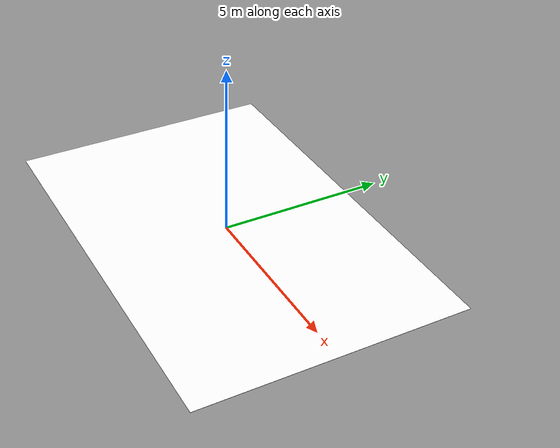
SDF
<?xml version="1.0"?>
<sdf version="1.8">
  <world name="warehouse_world">
    <scene>
      <grid>false</grid>
      <ambient>0.35 0.35 0.35 1</ambient>
      <background>0.05 0.05 0.05 1</background>
    </scene>
    <physics name="1ms" type="ignored">
      <max_step_size>0.002</max_step_size>
      <real_time_factor>1.0</real_time_factor>
    </physics>
    <plugin filename="ignition-gazebo-physics-system" name="ignition::gazebo::systems::Physics"></plugin>
    <plugin filename="ignition-gazebo-user-commands-system" name="ignition::gazebo::systems::UserCommands"></plugin>
    <plugin filename="ignition-gazebo-scene-broadcaster-system" name="ignition::gazebo::systems::SceneBroadcaster"></plugin>

    <include>
        <uri>model://warehouse</uri>
        <pose>0 0 0 0 0 0</pose>
    </include>

  <light name="sun" type="directional">
    <cast_shadows>true</cast_shadows>

    <pose>0 0 5 0 0 0</pose>

    <direction>-0.5 -0.3 -1</direction>

    <diffuse>0.9 0.9 0.9 1</diffuse>
    <specular>0.3 0.3 0.3 1</specular>

    <attenuation>
      <range>200</range>
      <constant>0.9</constant>
      <linear>0.01</linear>
      <quadratic>0.001</quadratic>
    </attenuation>
  </light>

  <light name="warehouse_lamp_1" type="point">
    <pose>0 9 5 0 0 0</pose>
    <diffuse>1.0 0.95 0.9 1</diffuse>
    <specular>0.2 0.2 0.2 1</specular>
    <attenuation>
      <range>25</range>
      <constant>0.8</constant>
      <linear>0.04</linear>
      <quadratic>0.01</quadratic>
    </attenuation>
  </light>

  <light name="warehouse_lamp_2" type="point">
    <pose>0 3 5 0 0 0</pose>
    <diffuse>1.0 0.95 0.9 1</diffuse>
    <specular>0.2 0.2 0.2 1</specular>
    <attenuation>
      <range>25</range>
      <constant>0.8</constant>
      <linear>0.04</linear>
      <quadratic>0.01</quadratic>
    </attenuation>
  </light>

  <light name="warehouse_lamp_3" type="point">
    <pose>0 -3 5 0 0 0</pose>
    <diffuse>1.0 0.95 0.9 1</diffuse>
    <specular>0.2 0.2 0.2 1</specular>
    <attenuation>
      <range>25</range>
      <constant>0.8</constant>
      <linear>0.04</linear>
      <quadratic>0.01</quadratic>
    </attenuation>
  </light>

  <light name="warehouse_lamp_4" type="point">
    <pose>0 -10 5 0 0 0</pose>
    <diffuse>1.0 0.95 0.9 1</diffuse>
    <specular>0.2 0.2 0.2 1</specular>
    <attenuation>
      <range>25</range>
      <constant>0.8</constant>
      <linear>0.04</linear>
      <quadratic>0.01</quadratic>
    </attenuation>
  </light>

  <light name="warehouse_lamp_5" type="point">
    <pose>-6 -10 5 0 0 0</pose>
    <diffuse>1.0 0.95 0.9 1</diffuse>
    <specular>0.2 0.2 0.2 1</specular>
    <attenuation>
      <range>25</range>
      <constant>0.8</constant>
      <linear>0.04</linear>
      <quadratic>0.01</quadratic>
    </attenuation>
  </light>

  <light name="warehouse_lamp_6" type="point">
    <pose>-15 -10 5 0 0 0</pose>
    <diffuse>1.0 0.95 0.9 1</diffuse>
    <specular>0.2 0.2 0.2 1</specular>
    <attenuation>
      <range>25</range>
      <constant>0.8</constant>
      <linear>0.04</linear>
      <quadratic>0.01</quadratic>
    </attenuation>
  </light>

  </world>
</sdf>

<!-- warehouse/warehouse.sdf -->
<sdf version="1.8">
  <model name="warehouse">
    <static>true</static>
    <link name="testlink">
      <visual name="MainSupportBeam_Walkway_0">
        <geometry>
          <mesh>
            <uri>meshes/warehouse.dae</uri>
            <submesh>
              <name>MainSupportBeam_Walkway_0</name>
            </submesh>
          </mesh>
        </geometry>
        <material>
          <diffuse>1.0 1.0 1.0 1.0</diffuse>
          <specular>0.15 0.15 0.15 1.0</specular>
          <pbr>
            <metal>
              <albedo_map>meshes/Image_0</albedo_map>
            </metal>
          </pbr>
        </material>
      </visual>
      <visual name="cable_Rubber_0">
        <geometry>
          <mesh>
            <uri>meshes/warehouse.dae</uri>
            <submesh>
              <name>cable_Rubber_0</name>
            </submesh>
          </mesh>
        </geometry>
        <material>
          <diffuse>1.0 1.0 1.0 1.0</diffuse>
          <specular>0.15 0.15 0.15 1.0</specular>
          <pbr>
            <metal>
              <albedo_map>meshes/Image_3</albedo_map>
            </metal>
          </pbr>
        </material>
      </visual>
      <visual name="WarehouseWalls_factory_wall_0">
        <geometry>
          <mesh>
            <uri>meshes/warehouse.dae</uri>
            <submesh>
              <name>WarehouseWalls_factory_wall_0</name>
            </submesh>
          </mesh>
        </geometry>
        <material>
          <diffuse>1.0 1.0 1.0 1.0</diffuse>
          <specular>0.15 0.15 0.15 1.0</specular>
          <pbr>
            <metal>
              <albedo_map>meshes/Image_6</albedo_map>
            </metal>
          </pbr>
        </material>
      </visual>
      <visual name="Roof_Walkway_0">
        <geometry>
          <mesh>
            <uri>meshes/warehouse.dae</uri>
            <submesh>
              <name>Roof_Walkway_0</name>
            </submesh>
          </mesh>
        </geometry>
        <material>
          <diffuse>1.0 1.0 1.0 1.0</diffuse>
          <specular>0.15 0.15 0.15 1.0</specular>
          <pbr>
            <metal>
              <albedo_map>meshes/Image_0</albedo_map>
            </metal>
          </pbr>
        </material>
      </visual>
      <visual name="Roof_rusty metal plate corrugated_0">
        <geometry>
          <mesh>
            <uri>meshes/warehouse.dae</uri>
            <submesh>
              <name>Roof_rusty metal plate corrugated_0</name>
            </submesh>
          </mesh>
        </geometry>
        <material>
          <diffuse>1.0 1.0 1.0 1.0</diffuse>
          <specular>0.15 0.15 0.15 1.0</specular>
          <pbr>
            <metal>
              <albedo_map>meshes/Image_9</albedo_map>
            </metal>
          </pbr>
        </material>
      </visual>
      <visual name="SideSupportBeam_Walkway_0">
        <geometry>
          <mesh>
            <uri>meshes/warehouse.dae</uri>
            <submesh>
              <name>SideSupportBeam_Walkway_0</name>
            </submesh>
          </mesh>
        </geometry>
        <material>
          <diffuse>1.0 1.0 1.0 1.0</diffuse>
          <specular>0.15 0.15 0.15 1.0</specular>
          <pbr>
            <metal>
              <albedo_map>meshes/Image_0</albedo_map>
            </metal>
          </pbr>
        </material>
      </visual>
      <visual name="Floor_WarehouseMainConcrete_0">
        <geometry>
          <mesh>
            <uri>meshes/warehouse.dae</uri>
            <submesh>
              <name>Floor_WarehouseMainConcrete_0</name>
            </submesh>
          </mesh>
        </geometry>
        <material>
          <diffuse>1.0 1.0 1.0 1.0</diffuse>
          <specular>0.15 0.15 0.15 1.0</specular>
          <pbr>
            <metal>
              <albedo_map>meshes/Image_12</albedo_map>
            </metal>
          </pbr>
        </material>
      </visual>
      <visual name="Windows_WarehouseWindow_0">
        <geometry>
          <mesh>
            <uri>meshes/warehouse.dae</uri>
            <submesh>
              <name>Windows_WarehouseWindow_0</name>
            </submesh>
          </mesh>
        </geometry>
        <material>
          <diffuse>1.0 1.0 1.0 1.0</diffuse>
          <specular>0.15 0.15 0.15 1.0</specular>
          <pbr>
            <metal>
              <albedo_map>meshes/Image_15</albedo_map>
            </metal>
          </pbr>
        </material>
      </visual>
      <visual name="Windows_WarehouseWindow_0.001">
        <geometry>
          <mesh>
            <uri>meshes/warehouse.dae</uri>
            <submesh>
              <name>Windows_WarehouseWindow_0.001</name>
            </submesh>
          </mesh>
        </geometry>
        <material>
          <diffuse>1.0 1.0 1.0 1.0</diffuse>
          <specular>0.15 0.15 0.15 1.0</specular>
          <pbr>
            <metal>
              <albedo_map>meshes/Image_15</albedo_map>
            </metal>
          </pbr>
        </material>
      </visual>
      <visual name="Office_Office_Floor_0">
        <geometry>
          <mesh>
            <uri>meshes/warehouse.dae</uri>
            <submesh>
              <name>Office_Office_Floor_0</name>
            </submesh>
          </mesh>
        </geometry>
        <material>
          <diffuse>1.0 1.0 1.0 1.0</diffuse>
          <specular>0.15 0.15 0.15 1.0</specular>
          <pbr>
            <metal>
              <albedo_map>meshes/Image_17</albedo_map>
            </metal>
          </pbr>
        </material>
      </visual>
      <visual name="Office_MetalRusted_0">
        <geometry>
          <mesh>
            <uri>meshes/warehouse.dae</uri>
            <submesh>
              <name>Office_MetalRusted_0</name>
            </submesh>
          </mesh>
        </geometry>
        <material>
          <diffuse>1.0 1.0 1.0 1.0</diffuse>
          <specular>0.15 0.15 0.15 1.0</specular>
          <pbr>
            <metal>
              <albedo_map>meshes/Image_20</albedo_map>
            </metal>
          </pbr>
        </material>
      </visual>
      <visual name="Office_factory_wall_0">
        <geometry>
          <mesh>
            <uri>meshes/warehouse.dae</uri>
            <submesh>
              <name>Office_factory_wall_0</name>
            </submesh>
          </mesh>
        </geometry>
        <material>
          <diffuse>1.0 1.0 1.0 1.0</diffuse>
          <specular>0.15 0.15 0.15 1.0</specular>
          <pbr>
            <metal>
              <albedo_map>meshes/Image_6</albedo_map>
            </metal>
          </pbr>
        </material>
      </visual>
      <visual name="Walkway.001_MetalRusted_0">
        <geometry>
          <mesh>
            <uri>meshes/warehouse.dae</uri>
            <submesh>
              <name>Walkway.001_MetalRusted_0</name>
            </submesh>
          </mesh>
        </geometry>
        <material>
          <diffuse>1.0 1.0 1.0 1.0</diffuse>
          <specular>0.15 0.15 0.15 1.0</specular>
          <pbr>
            <metal>
              <albedo_map>meshes/Image_20</albedo_map>
            </metal>
          </pbr>
        </material>
      </visual>
      <visual name="Walkway.001_MetalWalkway_0">
        <geometry>
          <mesh>
            <uri>meshes/warehouse.dae</uri>
            <submesh>
              <name>Walkway.001_MetalWalkway_0</name>
            </submesh>
          </mesh>
        </geometry>
        <material>
          <diffuse>1.0 1.0 1.0 1.0</diffuse>
          <specular>0.15 0.15 0.15 1.0</specular>
          <pbr>
            <metal>
              <albedo_map>meshes/Image_23</albedo_map>
            </metal>
          </pbr>
        </material>
      </visual>
      <visual name="WarehouseBase_WarehouseMainConcrete_0">
        <geometry>
          <mesh>
            <uri>meshes/warehouse.dae</uri>
            <submesh>
              <name>WarehouseBase_WarehouseMainConcrete_0</name>
            </submesh>
          </mesh>
        </geometry>
        <material>
          <diffuse>1.0 1.0 1.0 1.0</diffuse>
          <specular>0.15 0.15 0.15 1.0</specular>
          <pbr>
            <metal>
              <albedo_map>meshes/Image_12</albedo_map>
            </metal>
          </pbr>
        </material>
      </visual>
      <visual name="SmallGateVar3_GateRail_0">
        <geometry>
          <mesh>
            <uri>meshes/warehouse.dae</uri>
            <submesh>
              <name>SmallGateVar3_GateRail_0</name>
            </submesh>
          </mesh>
        </geometry>
        <material>
          <diffuse>1.0 1.0 1.0 1.0</diffuse>
          <specular>0.15 0.15 0.15 1.0</specular>
          <pbr>
            <metal>
              <albedo_map>meshes/Image_26</albedo_map>
            </metal>
          </pbr>
        </material>
      </visual>
      <visual name="SmallGateVar3_Rubber_0">
        <geometry>
          <mesh>
            <uri>meshes/warehouse.dae</uri>
            <submesh>
              <name>SmallGateVar3_Rubber_0</name>
            </submesh>
          </mesh>
        </geometry>
        <material>
          <diffuse>1.0 1.0 1.0 1.0</diffuse>
          <specular>0.15 0.15 0.15 1.0</specular>
          <pbr>
            <metal>
              <albedo_map>meshes/Image_3</albedo_map>
            </metal>
          </pbr>
        </material>
      </visual>
      <visual name="SmallGateVar2_GateRail_0">
        <geometry>
          <mesh>
            <uri>meshes/warehouse.dae</uri>
            <submesh>
              <name>SmallGateVar2_GateRail_0</name>
            </submesh>
          </mesh>
        </geometry>
        <material>
          <diffuse>1.0 1.0 1.0 1.0</diffuse>
          <specular>0.15 0.15 0.15 1.0</specular>
          <pbr>
            <metal>
              <albedo_map>meshes/Image_26</albedo_map>
            </metal>
          </pbr>
        </material>
      </visual>
      <visual name="SmallGateVar2_Rubber_0">
        <geometry>
          <mesh>
            <uri>meshes/warehouse.dae</uri>
            <submesh>
              <name>SmallGateVar2_Rubber_0</name>
            </submesh>
          </mesh>
        </geometry>
        <material>
          <diffuse>1.0 1.0 1.0 1.0</diffuse>
          <specular>0.15 0.15 0.15 1.0</specular>
          <pbr>
            <metal>
              <albedo_map>meshes/Image_3</albedo_map>
            </metal>
          </pbr>
        </material>
      </visual>
      <visual name="SmallGateVar1_GateRail_0">
        <geometry>
          <mesh>
            <uri>meshes/warehouse.dae</uri>
            <submesh>
              <name>SmallGateVar1_GateRail_0</name>
            </submesh>
          </mesh>
        </geometry>
        <material>
          <diffuse>1.0 1.0 1.0 1.0</diffuse>
          <specular>0.15 0.15 0.15 1.0</specular>
          <pbr>
            <metal>
              <albedo_map>meshes/Image_26</albedo_map>
            </metal>
          </pbr>
        </material>
      </visual>
      <visual name="SmallGateVar1_Rubber_0">
        <geometry>
          <mesh>
            <uri>meshes/warehouse.dae</uri>
            <submesh>
              <name>SmallGateVar1_Rubber_0</name>
            </submesh>
          </mesh>
        </geometry>
        <material>
          <diffuse>1.0 1.0 1.0 1.0</diffuse>
          <specular>0.15 0.15 0.15 1.0</specular>
          <pbr>
            <metal>
              <albedo_map>meshes/Image_3</albedo_map>
            </metal>
          </pbr>
        </material>
      </visual>
      <visual name="MainGate.001_GateRail_0">
        <geometry>
          <mesh>
            <uri>meshes/warehouse.dae</uri>
            <submesh>
              <name>MainGate.001_GateRail_0</name>
            </submesh>
          </mesh>
        </geometry>
        <material>
          <diffuse>1.0 1.0 1.0 1.0</diffuse>
          <specular>0.15 0.15 0.15 1.0</specular>
          <pbr>
            <metal>
              <albedo_map>meshes/Image_26</albedo_map>
            </metal>
          </pbr>
        </material>
      </visual>
      <visual name="MainGate.001_Rubber_0">
        <geometry>
          <mesh>
            <uri>meshes/warehouse.dae</uri>
            <submesh>
              <name>MainGate.001_Rubber_0</name>
            </submesh>
          </mesh>
        </geometry>
        <material>
          <diffuse>1.0 1.0 1.0 1.0</diffuse>
          <specular>0.15 0.15 0.15 1.0</specular>
          <pbr>
            <metal>
              <albedo_map>meshes/Image_3</albedo_map>
            </metal>
          </pbr>
        </material>
      </visual>
      <visual name="Door2.004_DoorMetal_0">
        <geometry>
          <mesh>
            <uri>meshes/warehouse.dae</uri>
            <submesh>
              <name>Door2.004_DoorMetal_0</name>
            </submesh>
          </mesh>
        </geometry>
        <material>
          <diffuse>1.0 1.0 1.0 1.0</diffuse>
          <specular>0.15 0.15 0.15 1.0</specular>
          <pbr>
            <metal>
              <albedo_map>meshes/Image_28</albedo_map>
            </metal>
          </pbr>
        </material>
      </visual>
      <visual name="Door2.003_DoorMetal_0">
        <geometry>
          <mesh>
            <uri>meshes/warehouse.dae</uri>
            <submesh>
              <name>Door2.003_DoorMetal_0</name>
            </submesh>
          </mesh>
        </geometry>
        <material>
          <diffuse>1.0 1.0 1.0 1.0</diffuse>
          <specular>0.15 0.15 0.15 1.0</specular>
          <pbr>
            <metal>
              <albedo_map>meshes/Image_28</albedo_map>
            </metal>
          </pbr>
        </material>
      </visual>
      <visual name="Door2.002_DoorMetal_0">
        <geometry>
          <mesh>
            <uri>meshes/warehouse.dae</uri>
            <submesh>
              <name>Door2.002_DoorMetal_0</name>
            </submesh>
          </mesh>
        </geometry>
        <material>
          <diffuse>1.0 1.0 1.0 1.0</diffuse>
          <specular>0.15 0.15 0.15 1.0</specular>
          <pbr>
            <metal>
              <albedo_map>meshes/Image_28</albedo_map>
            </metal>
          </pbr>
        </material>
      </visual>
      <visual name="Door2.001_DoorMetal_0">
        <geometry>
          <mesh>
            <uri>meshes/warehouse.dae</uri>
            <submesh>
              <name>Door2.001_DoorMetal_0</name>
            </submesh>
          </mesh>
        </geometry>
        <material>
          <diffuse>1.0 1.0 1.0 1.0</diffuse>
          <specular>0.15 0.15 0.15 1.0</specular>
          <pbr>
            <metal>
              <albedo_map>meshes/Image_28</albedo_map>
            </metal>
          </pbr>
        </material>
      </visual>
      <visual name="Door2_DoorMetal_0">
        <geometry>
          <mesh>
            <uri>meshes/warehouse.dae</uri>
            <submesh>
              <name>Door2_DoorMetal_0</name>
            </submesh>
          </mesh>
        </geometry>
        <material>
          <diffuse>1.0 1.0 1.0 1.0</diffuse>
          <specular>0.15 0.15 0.15 1.0</specular>
          <pbr>
            <metal>
              <albedo_map>meshes/Image_28</albedo_map>
            </metal>
          </pbr>
        </material>
      </visual>
      <visual name="Door2.005_DoorMetal_0">
        <geometry>
          <mesh>
            <uri>meshes/warehouse.dae</uri>
            <submesh>
              <name>Door2.005_DoorMetal_0</name>
            </submesh>
          </mesh>
        </geometry>
        <material>
          <diffuse>1.0 1.0 1.0 1.0</diffuse>
          <specular>0.15 0.15 0.15 1.0</specular>
          <pbr>
            <metal>
              <albedo_map>meshes/Image_28</albedo_map>
            </metal>
          </pbr>
        </material>
      </visual>
      <visual name="Door2.006_DoorMetal_0">
        <geometry>
          <mesh>
            <uri>meshes/warehouse.dae</uri>
            <submesh>
              <name>Door2.006_DoorMetal_0</name>
            </submesh>
          </mesh>
        </geometry>
        <material>
          <diffuse>1.0 1.0 1.0 1.0</diffuse>
          <specular>0.15 0.15 0.15 1.0</specular>
          <pbr>
            <metal>
              <albedo_map>meshes/Image_28</albedo_map>
            </metal>
          </pbr>
        </material>
      </visual>
      <visual name="Door2.007_DoorMetal_0">
        <geometry>
          <mesh>
            <uri>meshes/warehouse.dae</uri>
            <submesh>
              <name>Door2.007_DoorMetal_0</name>
            </submesh>
          </mesh>
        </geometry>
        <material>
          <diffuse>1.0 1.0 1.0 1.0</diffuse>
          <specular>0.15 0.15 0.15 1.0</specular>
          <pbr>
            <metal>
              <albedo_map>meshes/Image_28</albedo_map>
            </metal>
          </pbr>
        </material>
      </visual>
      <visual name="Door2.008_DoorMetal_0">
        <geometry>
          <mesh>
            <uri>meshes/warehouse.dae</uri>
            <submesh>
              <name>Door2.008_DoorMetal_0</name>
            </submesh>
          </mesh>
        </geometry>
        <material>
          <diffuse>1.0 1.0 1.0 1.0</diffuse>
          <specular>0.15 0.15 0.15 1.0</specular>
          <pbr>
            <metal>
              <albedo_map>meshes/Image_28</albedo_map>
            </metal>
          </pbr>
        </material>
      </visual>
      <visual name="Door2.009_DoorMetal_0">
        <geometry>
          <mesh>
            <uri>meshes/warehouse.dae</uri>
            <submesh>
              <name>Door2.009_DoorMetal_0</name>
            </submesh>
          </mesh>
        </geometry>
        <material>
          <diffuse>1.0 1.0 1.0 1.0</diffuse>
          <specular>0.15 0.15 0.15 1.0</specular>
          <pbr>
            <metal>
              <albedo_map>meshes/Image_28</albedo_map>
            </metal>
          </pbr>
        </material>
      </visual>
      <visual name="Door2.010_DoorMetal_0">
        <geometry>
          <mesh>
            <uri>meshes/warehouse.dae</uri>
            <submesh>
              <name>Door2.010_DoorMetal_0</name>
            </submesh>
          </mesh>
        </geometry>
        <material>
          <diffuse>1.0 1.0 1.0 1.0</diffuse>
          <specular>0.15 0.15 0.15 1.0</specular>
          <pbr>
            <metal>
              <albedo_map>meshes/Image_28</albedo_map>
            </metal>
          </pbr>
        </material>
      </visual>
      <visual name="Railings_MetalRusted_0">
        <geometry>
          <mesh>
            <uri>meshes/warehouse.dae</uri>
            <submesh>
              <name>Railings_MetalRusted_0</name>
            </submesh>
          </mesh>
        </geometry>
        <material>
          <diffuse>1.0 1.0 1.0 1.0</diffuse>
          <specular>0.15 0.15 0.15 1.0</specular>
          <pbr>
            <metal>
              <albedo_map>meshes/Image_20</albedo_map>
            </metal>
          </pbr>
        </material>
      </visual>
      <visual name="ConcreteSteps_WarehouseMainConcrete_0">
        <geometry>
          <mesh>
            <uri>meshes/warehouse.dae</uri>
            <submesh>
              <name>ConcreteSteps_WarehouseMainConcrete_0</name>
            </submesh>
          </mesh>
        </geometry>
        <material>
          <diffuse>1.0 1.0 1.0 1.0</diffuse>
          <specular>0.15 0.15 0.15 1.0</specular>
          <pbr>
            <metal>
              <albedo_map>meshes/Image_12</albedo_map>
            </metal>
          </pbr>
        </material>
      </visual>
      <visual name="Door2.011_DoorMetal_0">
        <geometry>
          <mesh>
            <uri>meshes/warehouse.dae</uri>
            <submesh>
              <name>Door2.011_DoorMetal_0</name>
            </submesh>
          </mesh>
        </geometry>
        <material>
          <diffuse>1.0 1.0 1.0 1.0</diffuse>
          <specular>0.15 0.15 0.15 1.0</specular>
          <pbr>
            <metal>
              <albedo_map>meshes/Image_28</albedo_map>
            </metal>
          </pbr>
        </material>
      </visual>
      <visual name="Door2.012_DoorMetal_0">
        <geometry>
          <mesh>
            <uri>meshes/warehouse.dae</uri>
            <submesh>
              <name>Door2.012_DoorMetal_0</name>
            </submesh>
          </mesh>
        </geometry>
        <material>
          <diffuse>1.0 1.0 1.0 1.0</diffuse>
          <specular>0.15 0.15 0.15 1.0</specular>
          <pbr>
            <metal>
              <albedo_map>meshes/Image_28</albedo_map>
            </metal>
          </pbr>
        </material>
      </visual>
      <visual name="OfficeDoor_OfficeDoorMaterial_0">
        <geometry>
          <mesh>
            <uri>meshes/warehouse.dae</uri>
            <submesh>
              <name>OfficeDoor_OfficeDoorMaterial_0</name>
            </submesh>
          </mesh>
        </geometry>
        <material>
          <diffuse>1.0 1.0 1.0 1.0</diffuse>
          <specular>0.15 0.15 0.15 1.0</specular>
          <pbr>
            <metal>
              <albedo_map>meshes/Image_30</albedo_map>
            </metal>
          </pbr>
        </material>
      </visual>
      <visual name="OfficeWindows_OfficeWindow_0">
        <geometry>
          <mesh>
            <uri>meshes/warehouse.dae</uri>
            <submesh>
              <name>OfficeWindows_OfficeWindow_0</name>
            </submesh>
          </mesh>
        </geometry>
        <material>
          <diffuse>1.0 1.0 1.0 1.0</diffuse>
          <specular>0.15 0.15 0.15 1.0</specular>
          <pbr>
            <metal>
              <albedo_map>meshes/Image_33</albedo_map>
            </metal>
          </pbr>
        </material>
      </visual>
      <visual name="OfficeDoor.001_OfficeDoorMaterial_0">
        <geometry>
          <mesh>
            <uri>meshes/warehouse.dae</uri>
            <submesh>
              <name>OfficeDoor.001_OfficeDoorMaterial_0</name>
            </submesh>
          </mesh>
        </geometry>
        <material>
          <diffuse>1.0 1.0 1.0 1.0</diffuse>
          <specular>0.15 0.15 0.15 1.0</specular>
          <pbr>
            <metal>
              <albedo_map>meshes/Image_30</albedo_map>
            </metal>
          </pbr>
        </material>
      </visual>
      <collision name="collision">
        <geometry>
          <mesh>
            <uri>meshes/warehouse.dae</uri>
          </mesh>
        </geometry>
        <surface>
          <contact>
            <collide_bitmask>0x01</collide_bitmask>
          </contact>
        </surface>
      </collision>
    </link>
  </model>
</sdf>
